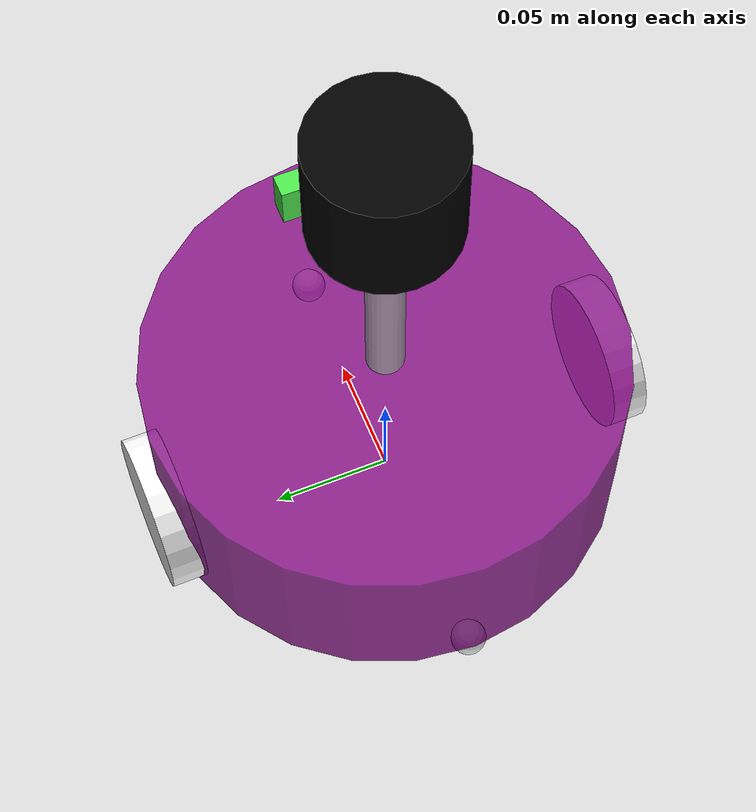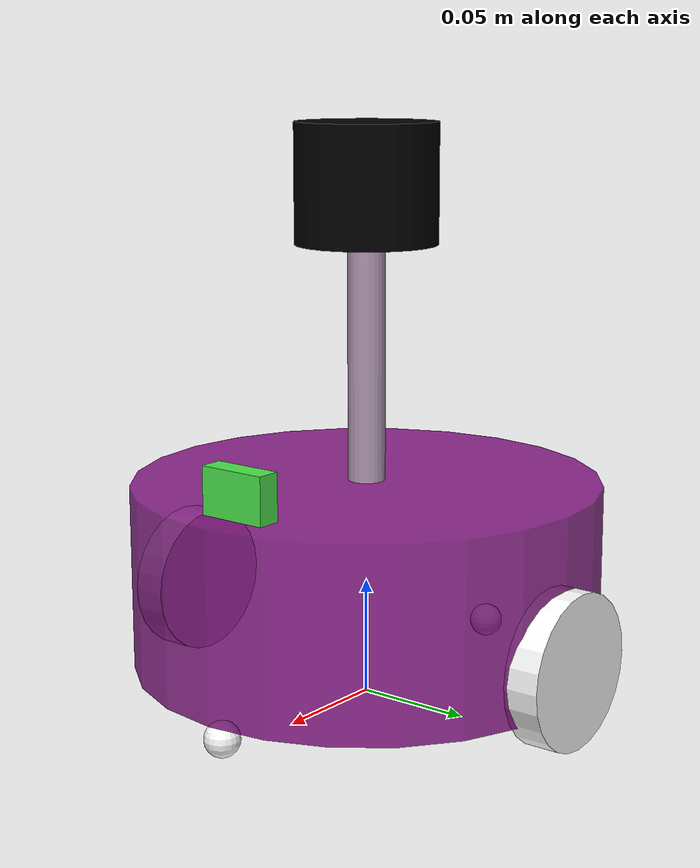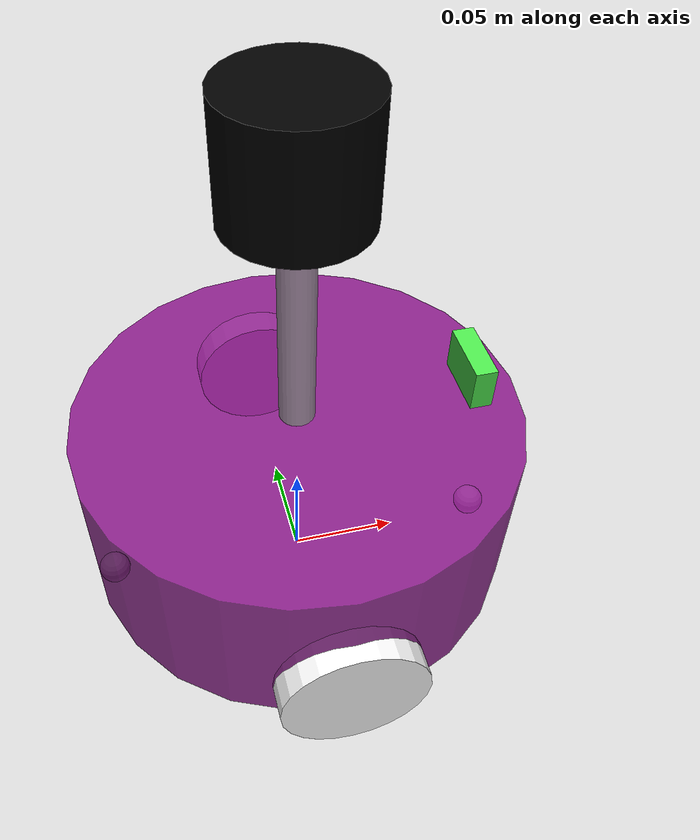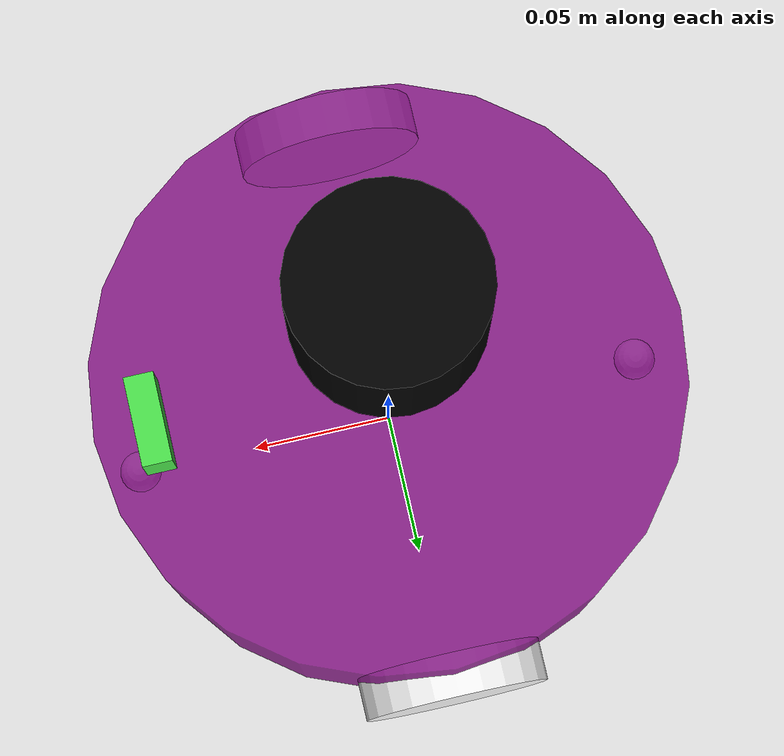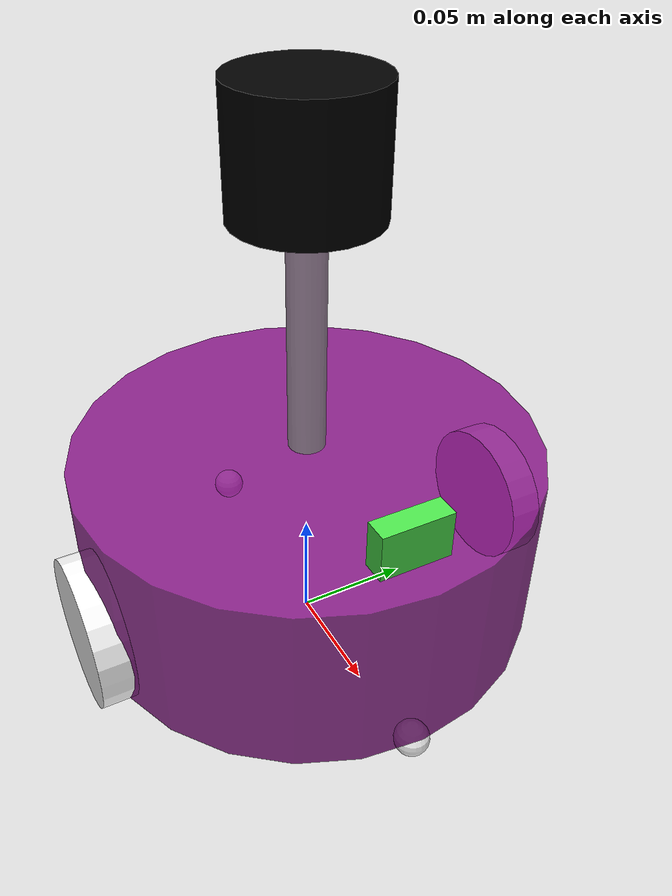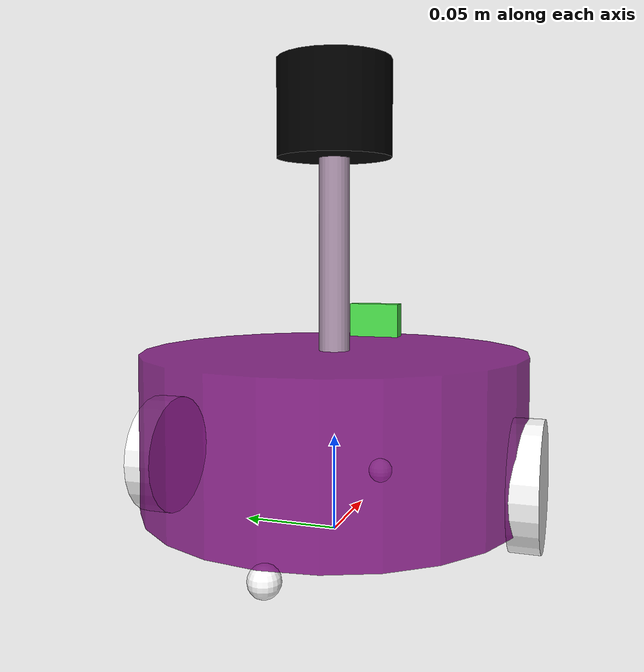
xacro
<robot name="car_full_ver" xmlns:xacro="http://wiki.ros.org/xacro">
    <xacro:include filename="base.xacro" />
    <xacro:include filename="camera.xacro" />
    <xacro:include filename="laser.xacro" />

    <xacro:include filename="controller.xacro"/>
    <xacro:include filename="laser_sim.xacro"/>
    <xacro:include filename="camera_sim.xacro" />
    <xacro:include filename="kinetic_sim.xacro" />
</robot>

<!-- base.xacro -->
<robot name="base" xmlns:xacro="http://www.ros.org/wiki/xacro">
    <!-- * Macro for inertia matrix -->
    <xacro:macro name="sphere_inertial_matrix" params="m r">
        <inertial>
            <mass value="${m}" />
            <inertia ixx="${2*m*r*r/5}" ixy="0" ixz="0"
                iyy="${2*m*r*r/5}" iyz="0"
                izz="${2*m*r*r/5}" />
        </inertial>
    </xacro:macro>

    <xacro:macro name="cylinder_inertial_matrix" params="m r h">
        <inertial>
            <mass value="${m}" />
            <inertia ixx="${m*(3*r*r+h*h)/12}" ixy="0" ixz="0"
                iyy="${m*(3*r*r+h*h)/12}" iyz="0"
                izz="${m*r*r/2}" />
        </inertial>
    </xacro:macro>

    <xacro:macro name="Box_inertial_matrix" params="m l w h">
        <inertial>
            <mass value="${m}" />
            <inertia ixx="${m*(h*h + l*l)/12}" ixy="0" ixz="0"
                iyy="${m*(w*w + l*l)/12}" iyz="0"
                izz="${m*(w*w + h*h)/12}" />
        </inertial>
    </xacro:macro>

    <!-- * Parameters -->
    <xacro:property name="PI" value="3.14159265358979" />
    <xacro:property name="base_footprint_radius" value="0.0000001" />
    <xacro:property name="base_link_radius" value="0.1" />
    <xacro:property name="base_link_length" value="0.08" />
    <xacro:property name="base_link_mass" value="0.5" />
    <xacro:property name="ground_space" value="0.015" />

    <!-- * base_footprint -->
    <link name="base_footprint">
        <visual>
            <geometry>
                <sphere radius="${base_footprint_radius}" />
            </geometry>
        </visual>
    </link>

    <!-- * base_link -->
    <link name="base_link">
        <visual>
            <geometry>
                <cylinder radius="${base_link_radius}" length="${base_link_length}" />
            </geometry>
            <origin xyz="0 0 0" rpy="0 0 0" />
            <material name="base_color">
                <color rgba="0.5 0 0.5 0.8" />
            </material>
        </visual>
        <collision>
            <geometry>
                <cylinder radius="${base_link_radius}" length="${base_link_length}" />
            </geometry>
        </collision>
        <xacro:cylinder_inertial_matrix m="${base_link_mass}" r="${base_link_radius}"
            h="${base_link_length}" />
    </link>

    <joint name="base_link2base_footprint" type="fixed">
        <parent link="base_footprint" />
        <child link="base_link" />
        <origin xyz="0 0 ${ground_space + base_link_length / 2}" />
    </joint>

    <gazebo reference="base_link">
        <material>Gazebo/Yellow</material>
    </gazebo>

    <!-- * Template: driver wheel -->
    <xacro:property name="wheel_radius" value="0.0325" />
    <xacro:property name="wheel_length" value="0.015" />
    <xacro:property name="wheel_mass" value="0.05" />

    <xacro:macro name="add_wheel" params="name LorR_flag">
        <link name="wheel_${name}">
            <visual>
                <geometry>
                    <cylinder radius="${wheel_radius}" length="${wheel_length}" />
                </geometry>
                <origin xyz="0 0 0" rpy="${PI / 2} 0 0" />
                <material name="wheel_${name}_color">
                    <color rgba="1 1 1 0.95" />
                </material>
            </visual>
            <collision>
                <geometry>
                    <cylinder radius="${wheel_radius}" length="${wheel_length}" />
                </geometry>
                <origin xyz="0 0 0" rpy="${PI / 2} 0 0" />
            </collision>
            <xacro:cylinder_inertial_matrix m="${wheel_mass}" r="${wheel_radius}"
                h="${wheel_length}"></xacro:cylinder_inertial_matrix>
        </link>

        <joint name="wheel_${name}_2base" type="continuous">
            <parent link="base_link"></parent>
            <child link="wheel_${name}"></child>
            <origin
                xyz="0 ${LorR_flag * base_link_radius} ${-(ground_space + base_link_length / 2 - wheel_radius)}"
                rpy="0 0 0" />
            <axis xyz="0 1 0" />
        </joint>

        <gazebo reference="wheel_${name}">
            <material>Gazebo/Red</material>
        </gazebo>
    </xacro:macro>

    <!-- * Template: universal wheel -->
    <xacro:property name="uni_wheel_radius" value="0.0075" />
    <xacro:property name="uni_wheel_mass" value="0.03" />
    <xacro:macro name="add_uni_wheel" params="name ForB_flag">
        <link name="uni_wheel_${name}">
            <visual>
                <geometry>
                    <sphere radius="${uni_wheel_radius}" />
                </geometry>
                <origin xyz="0 0 0" rpy="0 0 0" />
                <material name="uni_wheel_${name}_color">
                    <color rgba="1 1 1 0.95" />
                </material>
            </visual>
            <collision>
                <geometry>
                    <sphere radius="${uni_wheel_radius}" />
                </geometry>
                <origin xyz="0 0 0" rpy="0 0 0" />
            </collision>
            <xacro:sphere_inertial_matrix m="${uni_wheel_mass}" r="${uni_wheel_radius}" />
        </link>

        <joint name="uniWheel_${name}_2base" type="continuous">
            <parent link="base_link"></parent>
            <child link="uni_wheel_${name}"></child>
            <origin
                xyz="${ForB_flag * (base_link_radius - uni_wheel_radius)} 0 ${-(base_link_length / 2 + ground_space / 2)}"
                rpy="0 0 0" />
            <axis xyz="1 1 1" />
        </joint>

        <gazebo reference="uni_wheel_${name}">
            <material>Gazebo/Red</material>
        </gazebo>
    </xacro:macro>

    <xacro:add_wheel name="Left" LorR_flag="1" />
    <xacro:add_wheel name="Right" LorR_flag="-1" />

    <xacro:add_uni_wheel name="Forward" ForB_flag="1" />
    <xacro:add_uni_wheel name="Back" ForB_flag="-1" />
</robot>

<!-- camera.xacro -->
<robot name="camera" xmlns:xacro="http://wiki.ros.org/xacro">
    <!-- * Template: Camera -->
    <xacro:property name="camera_length" value="0.03" />
    <xacro:property name="camera_width" value="0.01" />
    <xacro:property name="camera_height" value="0.02" />
    <xacro:property name="camera_mass" value="0.01" />

    <xacro:macro name="add_camera" params="x_offset">
        <link name="camera">
            <visual>
                <geometry>
                    <box size="${camera_length} ${camera_width} ${camera_height}" />
                </geometry>
                <origin xyz="0 0 0" rpy="0 0 ${PI / 2}" />
                <material name="laser_support_material">
                    <color rgba="0.3 0.9 0.3 0.9" />
                </material>
            </visual>
            <collision>
                <geometry>
                    <box size="0.03 0.01 ${camera_height}" />
                </geometry>
                <origin xyz="0 0 0" rpy="0 0 ${PI / 2}" />
            </collision>
            <xacro:Box_inertial_matrix m="${camera_mass}" l="${camera_length}" w="${camera_width}"
                h="${camera_height}" />
        </link>

        <joint name="camera_2base" type="fixed">
            <parent link="base_link"></parent>
            <child link="camera"></child>
            <origin
                xyz="${base_link_radius - x_offset} 0 ${base_link_length / 2 + camera_height / 2}"
                rpy="0 0 0" />
        </joint>

        <gazebo reference="camera">
            <material>Gazebo/Blue</material>
        </gazebo>
    </xacro:macro>

    <xacro:add_camera x_offset="0.02" />
</robot>

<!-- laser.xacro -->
<robot name="laser" xmlns:xacro="http://wiki.ros.org/xacro">

    <!-- * Template: Laser -->
    <xacro:property name="laser_support_radius" value="0.008" />
    <xacro:property name="laser_support_length" value="0.1" />
    <xacro:property name="laser_support_mass" value="0.02" />

    <xacro:property name="laser_radius" value="0.03" />
    <xacro:property name="laser_length" value="0.05" />
    <xacro:property name="laser_mass" value="0.1" />

    <xacro:macro name="add_laser" params="">
        <link name="laser_support">
            <visual>
                <geometry>
                    <cylinder radius="${laser_support_radius}" length="${laser_support_length}" />
                </geometry>
                <origin xyz="0 0 0" rpy="0 0 0" />
                <material name="laser_support_material">
                    <color rgba="0.7 0.6 0.7 0.9" />
                </material>
            </visual>
            <collision>
                <geometry>
                    <cylinder radius="${laser_support_radius}" length="${laser_support_length}" />
                </geometry>
                <origin xyz="0.0 0.0 0.0" rpy="0.0 0.0 0.0" />
            </collision>
            <xacro:cylinder_inertial_matrix m="${laser_support_mass}" r="${laser_support_radius}"
                h="${laser_support_length}" />
        </link>

        <joint name="laser_support_2base" type="fixed">
            <parent link="base_link"></parent>
            <child link="laser_support"></child>
            <origin xyz="0 0 ${base_link_length / 2 + laser_support_length / 2}" rpy="0 0 0" />
        </joint>

        <gazebo reference="laser_support">
            <material>Gazebo/White</material>
        </gazebo>

        <link name="laser">
            <visual>
                <geometry>
                    <cylinder radius="${laser_radius}" length="${laser_length}" />
                </geometry>
                <origin xyz="0 0 0" rpy="0 0 0" />
                <material name="laser_material">
                    <color rgba="0 0 0 0.90" />
                </material>
            </visual>
            <collision>
                <geometry>
                    <cylinder radius="${laser_radius}" length="${laser_length}" />
                </geometry>
                <origin xyz="0.0 0.0 0.0" rpy="0.0 0.0 0.0" />
            </collision>
            <xacro:cylinder_inertial_matrix m="${laser_mass}" r="${laser_radius}" h="${laser_length}" />
        </link>

        <joint name="laser_2support_base" type="fixed">
            <parent link="laser_support"></parent>
            <child link="laser"></child>
            <origin xyz="0 0 ${laser_support_length / 2 + laser_length / 2}" rpy="0 0 0" />
        </joint>

        <gazebo reference="laser">
            <material>Gazebo/Black</material>
        </gazebo>
    </xacro:macro>

    <xacro:add_laser />
</robot>
